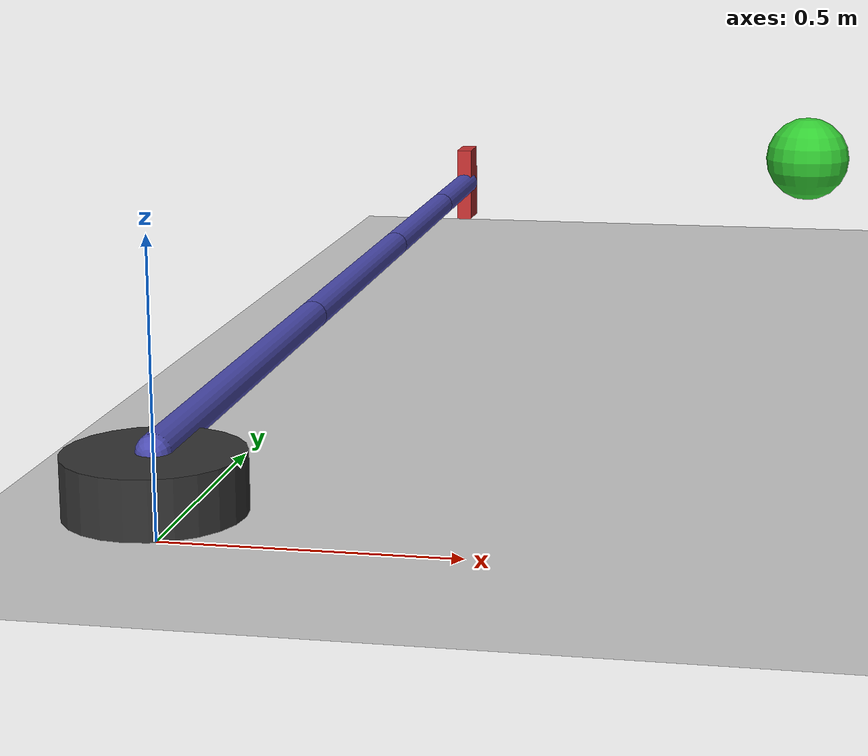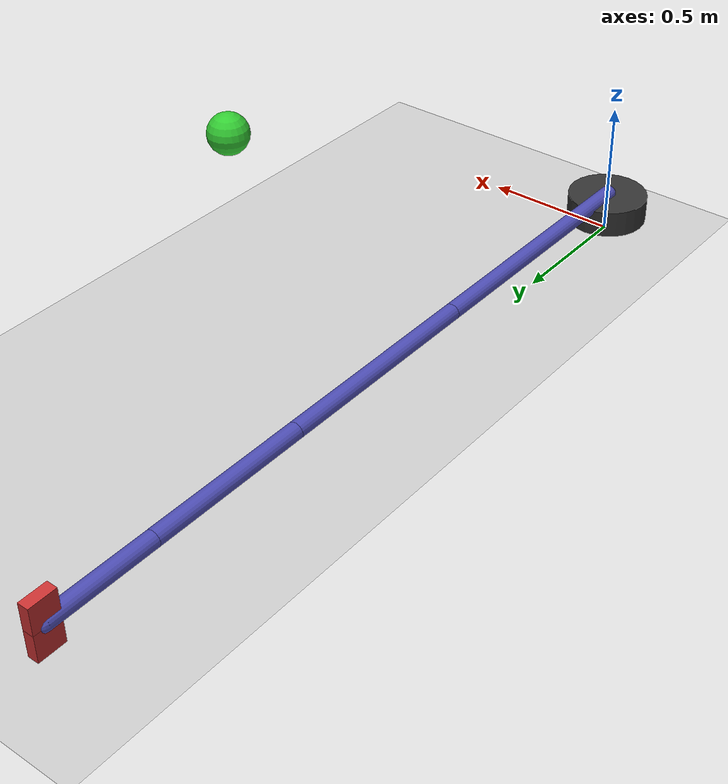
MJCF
<?xml version="1.0" encoding="utf-8"?>
<mujoco model="4_dof_robot_arm">
  <compiler angle="radian" coordinate="local"/>
  <option timestep="0.005" iterations="100" solver="Newton"/>

  <!-- 视觉与物理参数：移除perspective属性，新版MuJoCo不再支持 -->
  <visual>
    <global azimuth="135" elevation="-30"/> <!-- 仅保留azimuth和elevation -->
  </visual>

  <!-- 资产：材质、纹理（简化版） -->
  <asset>
    <material name="arm_material" rgba="0.3 0.3 0.7 1"/>  <!-- 臂杆材质（蓝灰色） -->
    <material name="base_material" rgba="0.2 0.2 0.2 1"/>  <!-- 基座材质（黑色） -->
    <material name="gripper_material" rgba="0.8 0.2 0.2 1"/>  <!-- 夹爪材质（红色） -->
    <material name="target_material" rgba="0.2 0.8 0.2 1"/>  <!-- 目标物体材质（绿色） -->
  </asset>

  <!-- 世界体：地面 -->
  <worldbody>
    <!-- 地面 -->
    <geom name="floor" type="plane" size="10 10 0.1" pos="0 0 0" rgba="0.8 0.8 0.8 1"/>

    <!-- 机械臂基座（固定在地面） -->
    <body name="base" pos="0 0 0.1">
      <geom name="base_geom" type="cylinder" size="0.15 0.05" material="base_material"/>
      <joint name="joint0" type="hinge" axis="0 0 1" pos="0 0 0"/>  <!-- 绕z轴旋转（水平） -->

      <!-- 第一段臂杆（长度1.0） -->
      <body name="arm1" pos="0 0 0.05">
        <geom name="arm1_geom" type="capsule" size="0.03" fromto="0 0 0 0 1.0 0" material="arm_material"/>
        <joint name="joint1" type="hinge" axis="1 0 0" pos="0 1.0 0"/>  <!-- 绕x轴旋转（垂直） -->

        <!-- 第二段臂杆（长度0.8） -->
        <body name="arm2" pos="0 1.0 0">
          <geom name="arm2_geom" type="capsule" size="0.03" fromto="0 0 0 0 0.8 0" material="arm_material"/>
          <joint name="joint2" type="hinge" axis="1 0 0" pos="0 0.8 0"/>

          <!-- 第三段臂杆（长度0.6） -->
          <body name="arm3" pos="0 0.8 0">
            <geom name="arm3_geom" type="capsule" size="0.03" fromto="0 0 0 0 0.6 0" material="arm_material"/>
            <joint name="joint3" type="hinge" axis="1 0 0" pos="0 0.6 0"/>

            <!-- 第四段臂杆（长度0.4）+ 夹爪 -->
            <body name="arm4" pos="0 0.6 0">
              <geom name="arm4_geom" type="capsule" size="0.03" fromto="0 0 0 0 0.4 0" material="arm_material"/>

              <!-- 夹爪（简化为两个几何体） -->
              <body name="gripper_left" pos="0 0.4 -0.05">
                <geom name="gripper_left_geom" type="box" size="0.02 0.05 0.05" material="gripper_material"/>
              </body>
              <body name="gripper_right" pos="0 0.4 0.05">
                <geom name="gripper_right_geom" type="box" size="0.02 0.05 0.05" material="gripper_material"/>
              </body>
            </body>
          </body>
        </body>
      </body>
    </body>

    <!-- 目标物体（可被抓取的小球） -->
    <body name="target_ball" pos="1.0 1.0 0.5">
      <geom name="target_geom" type="sphere" size="0.08" material="target_material"/>
      <freejoint name="target_joint"/>  <!-- 自由关节，可被推动 -->
    </body>
  </worldbody>

  <!-- 控制器：关节扭矩控制 -->
  <actuator>
    <motor name="motor0" joint="joint0" gear="100" ctrllimited="true" ctrlrange="-3.14 3.14"/>
    <motor name="motor1" joint="joint1" gear="100" ctrllimited="true" ctrlrange="-3.14 3.14"/>
    <motor name="motor2" joint="joint2" gear="100" ctrllimited="true" ctrlrange="-3.14 3.14"/>
    <motor name="motor3" joint="joint3" gear="100" ctrllimited="true" ctrlrange="-3.14 3.14"/>
  </actuator>
</mujoco>
